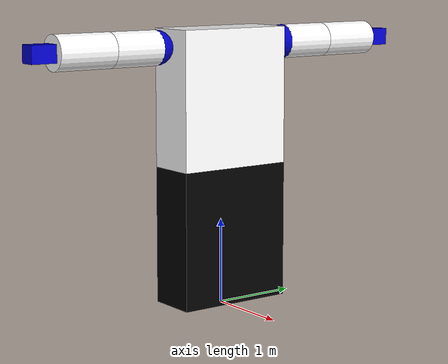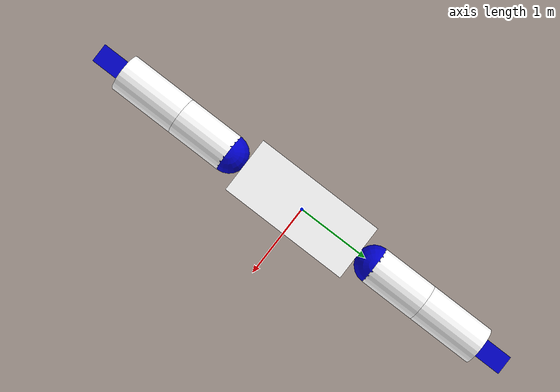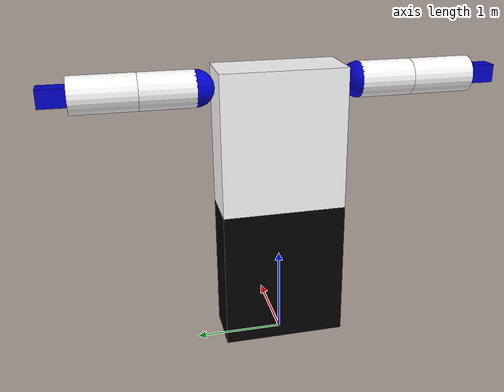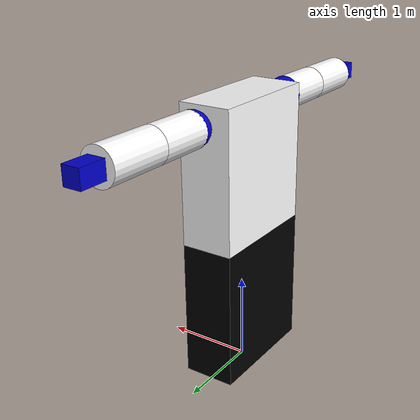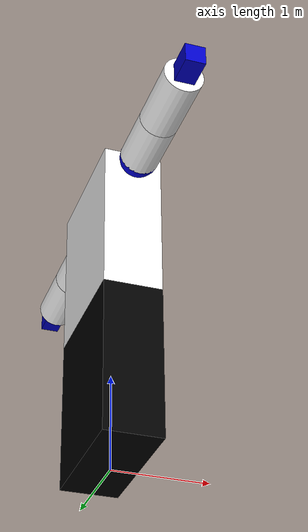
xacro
<?xml version="1.0"?>

<robot name="signbot_2arms" xmlns:xacro="http://www.ros.org/wiki/xacro" >
	<xacro:include filename="$(find signbot_description)/urdf/signbot_1_macros.xacro" />

<!-- /////////		MODEL		////////////////////////// -->
<link name="base_footprint">
  <inertial>
    <mass value="1.0"/>
    <origin xyz="0 0 0"/>
    <inertia ixx="0.01" ixy="0.0" ixz="0.0" iyy="0.01" iyz="0.0" izz="0.01"/>
  </inertial>
  <visual>
    <origin rpy="0 0 0" xyz="0 0 0"/>
    <geometry>
      <box size="0.01 0.01 0.01"/>
    </geometry>
    <material name="White"/>
  </visual>
  <collision>
    <!-- represent base collision with a simple rectangular model, positioned by base_size_z s.t. top
           surface of the collision box matches the top surface of the PR2 base -->
    <origin rpy="0 0 0" xyz="0 0 0.071"/>
    <geometry>
      <box size="0.001 0.001 0.001"/>
    </geometry>
  </collision>
</link>
<joint name="base_footprint_joint" type="fixed">
  <origin rpy="0 0 0" xyz="0 0 0.051"/>
  <child link="base_link"/>
  <parent link="base_footprint"/>
</joint>
<!-- base link -->
 <link name="base_link">

    <visual>
      <origin xyz="0 0 ${TORSO_HEIGHT/2}" rpy="0 0 0" />
      <geometry>
	       <box size="${TORSO_DEPTH} ${TORSO_LENGTH} ${TORSO_HEIGHT}" />
      </geometry>
      <material name="Black" />
    </visual>

    <collision>
      <origin xyz="0 0 ${TORSO_HEIGHT/2}" rpy="0 0 0" />
      <geometry>
	       <box size="${TORSO_DEPTH} ${TORSO_LENGTH} ${TORSO_HEIGHT}" />
      </geometry>
      </collision>
	<xacro:inertial_matrix mass="50"/>
  </link>

  <gazebo reference="base_link">
    <material>Gazebo/Black</material>
  </gazebo>

<!-- torso LINK -->
  <xacro:link_shape name="torso_link" color="White">
	<origin xyz="0 0 ${TORSO_HEIGHT/2}" rpy="0 0 0" />
	<box size="${TORSO_DEPTH} ${TORSO_LENGTH} ${TORSO_HEIGHT}" />
  </xacro:link_shape>

  <gazebo reference="torso_link">
    <material>Gazebo/White</material>
  </gazebo>

 <joint name="bottom_joint" type="fixed">
    <origin xyz="0 0 ${TORSO_HEIGHT}" rpy="0 0 0" />
    <parent link="base_link"/>
    <child link="torso_link"/>
  </joint>

<!-- ////////////////// right side /////////////// -->
<!-- arm -->
  <xacro:arm side="r"
	     axis_y_signal="-1"
	     lower="0"
	     upper="1" />

<!-- hand -->
  <xacro:hand side="r"
		axis_y_signal="-1" />

<!-- ////////////////// left side /////////////// -->
<!-- arm -->
  <xacro:arm side="l"
	     axis_y_signal="1"
	     lower="1"
	     upper="0" />

<!-- hand -->
  <xacro:hand side="l"
		axis_y_signal="1" />

<!-- /////////////////	END MODEL	//////////////////////// -->

</robot>

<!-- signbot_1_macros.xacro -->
<robot xmlns:xacro="http://www.ros.org/wiki/xacro">
<xacro:include filename="$(find signbot_description)/urdf/signbot_generic_macros.xacro" />

<!-- arm link properties -->
  <property name="ARM_RADIUS" value="0.2" />
  <property name="ARM_TOP_LENGTH" value="0.6" />
  <property name="ARM_BOTTOM_LENGTH" value="0.7" />

<!-- 	//////////////////	ARMS		/////////////////// -->
<xacro:macro name="arm" params="side axis_y_signal lower upper">

  <!-- SHOULDER PAN LINK -->
  <xacro:link_shape name="${side}_shoulder_link" color="Blue">
	<origin xyz="0 0 0" rpy="0 0 0" />
	<sphere radius="${ARM_RADIUS}"/>
  </xacro:link_shape>

  <gazebo reference="${side}_shoulder_link">
    <material>Gazebo/Blue</material>
  </gazebo>

  <joint name="${side}_shoulder_joint" type="revolute">
    <parent link="torso_link"/>
    <child link="${side}_shoulder_link"/>
    <origin xyz="0 ${axis_y_signal*((TORSO_LENGTH/2)+ARM_RADIUS)} ${TORSO_HEIGHT-ARM_RADIUS}"/>
    <axis xyz="0 1 0"/>
    <limit effort="1000.0" lower="-${PI/2}" upper="${PI/2}" velocity="0.5"/>
    <dynamics damping="50" friction="1"/>
  </joint>

<!-- TOP ARM  -->
  <xacro:link_shape name="${side}_top_arm_link" color="White">
	<origin rpy="${PI/2} 0 0" xyz="0 ${axis_y_signal*(ARM_TOP_LENGTH/2)} 0"/>
	<cylinder radius="${ARM_RADIUS}" length="${ARM_TOP_LENGTH}"/>
  </xacro:link_shape>

  <gazebo reference="${side}_top_arm_link">
    <material>Gazebo/White</material>
  </gazebo>

  <joint name="${side}_top_arm_joint" type="revolute">
    <parent link="${side}_shoulder_link"/>
    <child link="${side}_top_arm_link"/>
    <origin xyz="0 0 0"/>
    <axis xyz="0 0 1"/>
    <limit effort="1000.0" lower="${lower*(-1*(PI/2))}" upper="${upper*(PI/2)}" velocity="0.5"/>
    <dynamics damping="50" friction="1"/>
  </joint>

<!-- bottom arm -->
  <xacro:link_shape name="${side}_bottom_arm_link" color="White">
	 <origin rpy="${PI/2} 0 0" xyz="-${ARM_RADIUS} ${axis_y_signal*(ARM_BOTTOM_LENGTH/2)} 0"/>
	 <cylinder radius="${ARM_RADIUS}" length="${ARM_BOTTOM_LENGTH}"/>
  </xacro:link_shape>

  <gazebo reference="${side}_bottom_arm_link">
    <material>Gazebo/White</material>
  </gazebo>

  <joint name="${side}_elbow_joint" type="revolute">
    <parent link="${side}_top_arm_link"/>
    <child link="${side}_bottom_arm_link"/>
    <origin xyz="${ARM_RADIUS} ${axis_y_signal*(ARM_TOP_LENGTH)} 0"/>
    <axis xyz="0 0 1"/>
    <limit effort="1000.0" lower="${lower*(-1)*(PI-0.4)}" upper="${upper*(PI-0.4)}" velocity="0.5"/>
    <dynamics damping="50" friction="1"/>
  </joint>

<!--///	TRANSMICION ROS CONTROL	/// -->
	<xacro:transmission_block joint_name="${side}_shoulder_joint"/>
	<xacro:transmission_block joint_name="${side}_top_arm_joint"/>
	<xacro:transmission_block joint_name="${side}_elbow_joint"/>

</xacro:macro>

<!--	//////////////////////	HANDS	//////////////////////// -->
<xacro:macro name="hand" params="side axis_y_signal">

  <xacro:link_shape name="${side}_hand_link" color="Blue">
	<origin  rpy="0 0 0" xyz="0 ${axis_y_signal*(0.3/2)} 0"/>
	<box size="${ARM_RADIUS} 0.3 ${ARM_RADIUS}"/>
  </xacro:link_shape>

  <gazebo reference="${side}_hand_link">
    <material>Gazebo/Blue</material>
  </gazebo>

  <joint name="${side}_wrist_joint" type="continuous">
    <parent link="${side}_bottom_arm_link"/>
    <child link="${side}_hand_link"/>
    <origin rpy="0 0 0" xyz="-${ARM_RADIUS} ${axis_y_signal*(ARM_BOTTOM_LENGTH)} 0.0"/>
    <axis xyz="0 1 0"/>
    <limit effort="1000.0" velocity="1"/>
    <dynamics damping="50" friction="1"/>
  </joint>

<!--///	TRANSMICION ROS CONTROL	/// -->
	<xacro:transmission_block joint_name="${side}_wrist_joint"/>

</xacro:macro>

</robot>

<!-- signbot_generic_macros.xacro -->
<robot xmlns:xacro="http://www.ros.org/wiki/xacro">

<!-- COLORS -->
    <material name="Black">
        <color rgba="0.0 0.0 0.0 1.0"/>
    </material>

    <material name="Red">
        <color rgba="0.8 0.0 0.0 1.0"/>
    </material>

    <material name="White">
        <color rgba="1.0 1.0 1.0 1.0"/>
    </material>

    <material name="Cyan">
	<color rgba="0 1 1 1"/>
    </material>

    <material name="Yellow">
	<color rgba="1 1 0 1"/>
    </material>

    <material name="Green">
	<color rgba="0 1 0 1"/>
    </material>

    <material name="Blue">
	<color rgba="0 0 .8 1"/>
    </material>

    <material name="Silver">
	<color rgba="0.75 0.75 0.75 1"/>
     </material>

<!-- Generic Constants -->

  <property name="PI" value="3.14159"/>

<!-- Torso Constants -->
  <property name="TORSO_DEPTH" value="0.6" />
  <property name="TORSO_LENGTH" value="1.4"/>
  <property name="TORSO_HEIGHT" value="1.6"/>

<!-- Neck constants -->
  <property name="NECK_RADIUS" value="0.2" />
  <property name="NECK_LENGTH" value="0.2"/>

<!-- head constants -->

  <property name="HEAD_RADIUS" value="0.4"/>

<!-- Blocks of code -->

   <xacro:macro name="inertial_matrix" params="mass">
      <inertial>
      	<mass value="${mass}" />
        <inertia ixx="1.0" ixy="0.0" ixz="0.0" iyy="0.5" iyz="0.0" izz="1.0" />
      </inertial>
   </xacro:macro>

   <xacro:macro name="transmission_block" params="joint_name">
	  <transmission name="tran1">
	    <type>transmission_interface/SimpleTransmission</type>
	    <joint name="${joint_name}">
	      <hardwareInterface>PositionJointInterface</hardwareInterface>
	    </joint>
	    <actuator name="motor1">
	      <hardwareInterface>PositionJointInterface</hardwareInterface>
	      <mechanicalReduction>1</mechanicalReduction>
	    </actuator>
	  </transmission>
   </xacro:macro>

<!--	////////	LINK SHAPES	////////	-->
<xacro:macro name="link_shape" params="name color *origin *shape">
    <link name="${name}">
        <visual>
	   <xacro:insert_block name="origin" />
            <geometry>
                <xacro:insert_block name="shape" />
            </geometry>
            <material name="${color}" />
        </visual>
        <collision>
	   <xacro:insert_block name="origin" />
            <geometry>
                <xacro:insert_block name="shape" />
            </geometry>
        </collision>
	<xacro:inertial_matrix mass="1"/>
    </link>
</xacro:macro>

  <!-- ros_control plugin -->
  <gazebo>
    <plugin name="gazebo_ros_control" filename="libgazebo_ros_control.so">
	      <robotNamespace>/signbot</robotNamespace>
    </plugin>
  </gazebo>

</robot>
